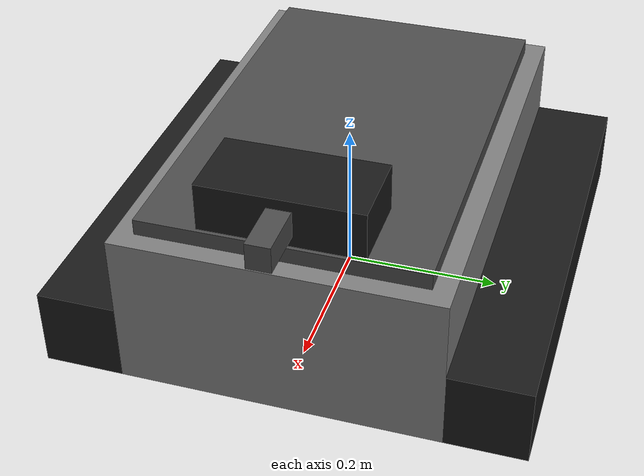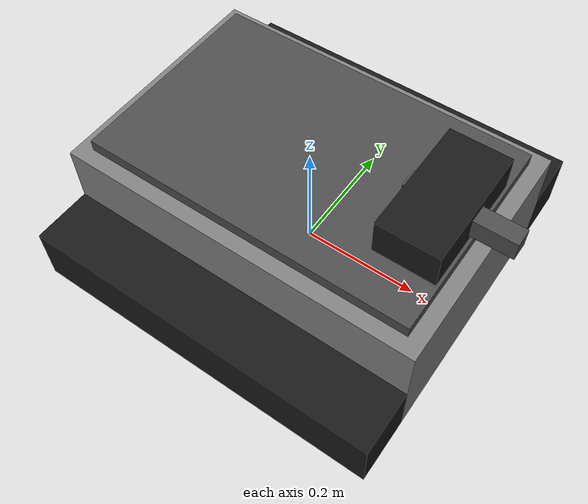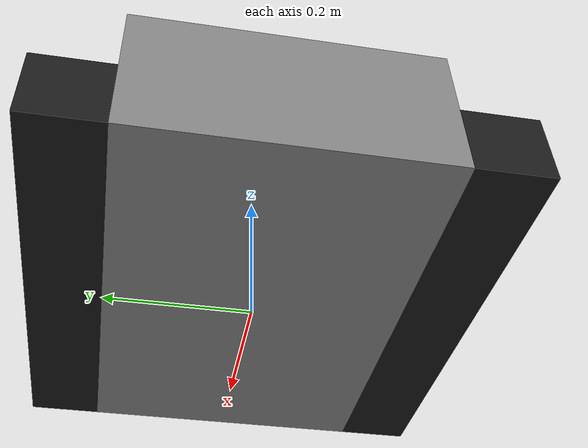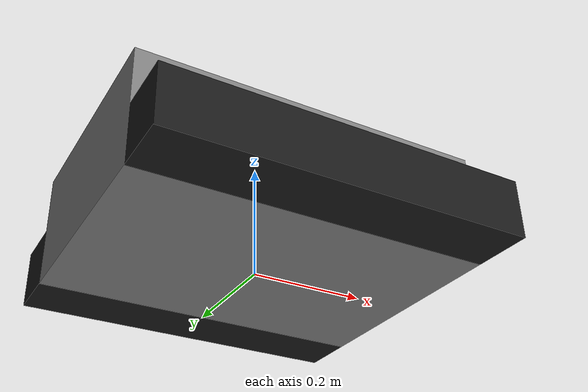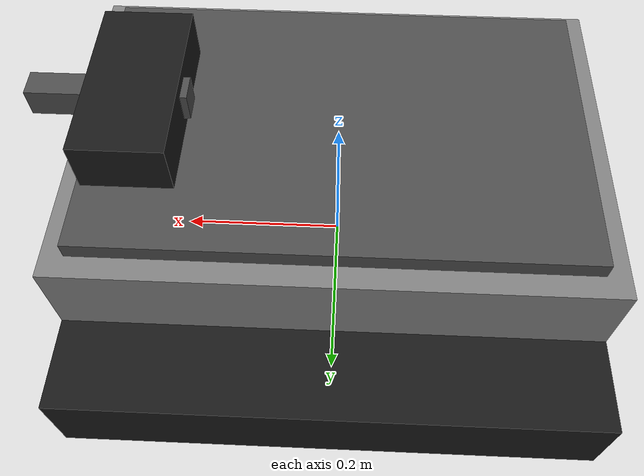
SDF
<?xml version="1.0" ?>
<sdf version="1.8">
  <model name="tracked_robot">
    <static>false</static>

    <!-- Base Link -->
    <link name="base_link">
      <inertial>
        <mass>15.0</mass>
        <inertia>
          <ixx>0.3</ixx>
          <ixy>0</ixy>
          <ixz>0</ixz>
          <iyy>0.5</iyy>
          <iyz>0</iyz>
          <izz>0.7</izz>
        </inertia>
        <pose>0 0 0.1 0 0 0</pose>
      </inertial>

      <collision name="base_collision">
        <pose>0 0 0.1 0 0 0</pose>
        <geometry>
          <box>
            <size>0.6 0.4 0.2</size>
          </box>
        </geometry>
      </collision>

      <visual name="base_visual">
        <pose>0 0 0.1 0 0 0</pose>
        <geometry>
          <box>
            <size>0.6 0.4 0.2</size>
          </box>
        </geometry>
        <material>
          <ambient>0.5 0.5 0.5 1</ambient>
          <diffuse>0.5 0.5 0.5 1</diffuse>
          <specular>0.1 0.1 0.1 1</specular>
        </material>
      </visual>

      <!-- Top Platform (for aesthetics) -->
      <visual name="top_platform_visual">
        <pose>0 0 0.21 0 0 0</pose>
        <geometry>
          <box>
            <size>0.55 0.35 0.02</size>
          </box>
        </geometry>
        <material>
          <ambient>0.3 0.3 0.3 1</ambient>
          <diffuse>0.3 0.3 0.3 1</diffuse>
          <specular>0.1 0.1 0.1 1</specular>
        </material>
      </visual>

      <!-- Control Panel -->
      <visual name="control_panel_visual">
        <pose>0.22 0 0.25 0 0 0</pose>
        <geometry>
          <box>
            <size>0.1 0.2 0.06</size>
          </box>
        </geometry>
        <material>
          <ambient>0.1 0.1 0.1 1</ambient>
          <diffuse>0.1 0.1 0.1 1</diffuse>
          <specular>0.1 0.1 0.1 1</specular>
        </material>
      </visual>
    </link>

    <!-- Left Track -->
    <link name="left_track">
      <pose>0 0.25 0.05 0 0 0</pose>
      <inertial>
        <mass>5.0</mass>
        <inertia>
          <ixx>0.1</ixx>
          <ixy>0</ixy>
          <ixz>0</ixz>
          <iyy>0.1</iyy>
          <iyz>0</iyz>
          <izz>0.1</izz>
        </inertia>
      </inertial>

      <collision name="left_track_collision">
        <geometry>
          <box>
            <size>0.6 0.1 0.1</size>
          </box>
        </geometry>
        <surface>
          <friction>
            <ode>
              <mu>0.9</mu>
              <mu2>0.9</mu2>
              <fdir1>1 0 0</fdir1>
            </ode>
          </friction>
        </surface>
      </collision>

      <visual name="left_track_visual">
        <geometry>
          <box>
            <size>0.6 0.1 0.1</size>
          </box>
        </geometry>
        <material>
          <ambient>0.1 0.1 0.1 1</ambient>
          <diffuse>0.1 0.1 0.1 1</diffuse>
          <specular>0.1 0.1 0.1 1</specular>
        </material>
      </visual>
    </link>

    <!-- Right Track -->
    <link name="right_track">
      <pose>0 -0.25 0.05 0 0 0</pose>
      <inertial>
        <mass>5.0</mass>
        <inertia>
          <ixx>0.1</ixx>
          <ixy>0</ixy>
          <ixz>0</ixz>
          <iyy>0.1</iyy>
          <iyz>0</iyz>
          <izz>0.1</izz>
        </inertia>
      </inertial>

      <collision name="right_track_collision">
        <geometry>
          <box>
            <size>0.6 0.1 0.1</size>
          </box>
        </geometry>
        <surface>
          <friction>
            <ode>
              <mu>0.9</mu>
              <mu2>0.9</mu2>
              <fdir1>1 0 0</fdir1>
            </ode>
          </friction>
        </surface>
      </collision>

      <visual name="right_track_visual">
        <geometry>
          <box>
            <size>0.6 0.1 0.1</size>
          </box>
        </geometry>
        <material>
          <ambient>0.1 0.1 0.1 1</ambient>
          <diffuse>0.1 0.1 0.1 1</diffuse>
          <specular>0.1 0.1 0.1 1</specular>
        </material>
      </visual>
    </link>

    <!-- ZED 2i Camera -->
    <link name="zed2i_link">
      <pose>0.25 0 0.25 0 0 0</pose>
      <inertial>
        <mass>0.159</mass>
        <inertia>
          <ixx>0.0001</ixx>
          <ixy>0</ixy>
          <ixz>0</ixz>
          <iyy>0.0001</iyy>
          <iyz>0</iyz>
          <izz>0.0001</izz>
        </inertia>
      </inertial>

      <collision name="zed2i_collision">
        <geometry>
          <box>
            <size>0.175 0.03 0.033</size>
          </box>
        </geometry>
      </collision>

      <visual name="zed2i_visual">
        <geometry>
          <box>
            <size>0.175 0.03 0.033</size>
          </box>
        </geometry>
        <material>
          <ambient>0.3 0.3 0.3 1</ambient>
          <diffuse>0.3 0.3 0.3 1</diffuse>
          <specular>0.1 0.1 0.1 1</specular>
        </material>
      </visual>

      <sensor name="zed2i_camera" type="camera">
        <camera>
          <horizontal_fov>1.91986</horizontal_fov>
          <image>
            <width>1920</width>
            <height>1080</height>
            <format>R8G8B8</format>
          </image>
          <clip>
            <near>0.02</near>
            <far>300</far>
          </clip>
          <noise>
            <type>gaussian</type>
            <mean>0.0</mean>
            <stddev>0.007</stddev>
          </noise>
        </camera>
        <always_on>1</always_on>
        <update_rate>30</update_rate>
        <topic>zed2i/rgb</topic>
      </sensor>
    </link>

    <!-- Left Track Joint -->
    <joint name="left_track_joint" type="revolute">
      <parent>base_link</parent>
      <child>left_track</child>
      <axis>
        <xyz>0 1 0</xyz>
        <limit>
          <lower>-10000000000000000</lower>
          <upper>10000000000000000</upper>
        </limit>
      </axis>
    </joint>

    <!-- Right Track Joint -->
    <joint name="right_track_joint" type="revolute">
      <parent>base_link</parent>
      <child>right_track</child>
      <axis>
        <xyz>0 1 0</xyz>
        <limit>
          <lower>-10000000000000000</lower>
          <upper>10000000000000000</upper>
        </limit>
      </axis>
    </joint>

    <!-- ZED 2i Camera Joint -->
    <joint name="zed2i_joint" type="fixed">
      <parent>base_link</parent>
      <child>zed2i_link</child>
    </joint>

    <!-- Differential Drive Plugin -->
    <plugin
      filename="libign_gazebo_diff_drive.so"
      name="gz::sim::systems::DiffDrive">
      <left_joint>left_track_joint</left_joint>
      <right_joint>right_track_joint</right_joint>
      <wheel_separation>0.5</wheel_separation>
      <wheel_radius>0.1</wheel_radius>
      <topic>/tracked_robot/cmd_vel</topic>
      <odom_topic>/tracked_robot/odom</odom_topic>
      <odom_publish_frequency>30</odom_publish_frequency>
      <max_linear_acceleration>1.0</max_linear_acceleration>
      <min_linear_acceleration>-1.0</min_linear_acceleration>
      <max_angular_acceleration>2.0</max_angular_acceleration>
      <min_angular_acceleration>-2.0</min_angular_acceleration>
      <max_linear_velocity>1.0</max_linear_velocity>
      <min_linear_velocity>-1.0</min_linear_velocity>
      <max_angular_velocity>1.0</max_angular_velocity>
      <min_angular_velocity>-1.0</min_angular_velocity>
    </plugin>
  </model>
</sdf>
